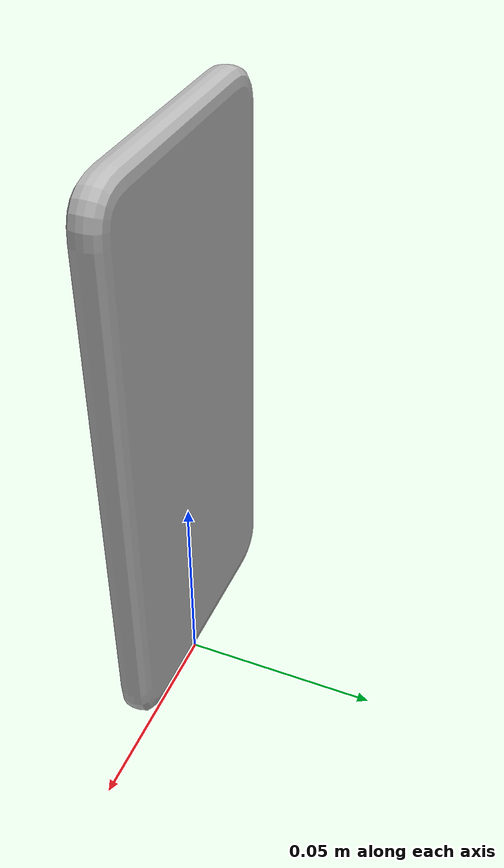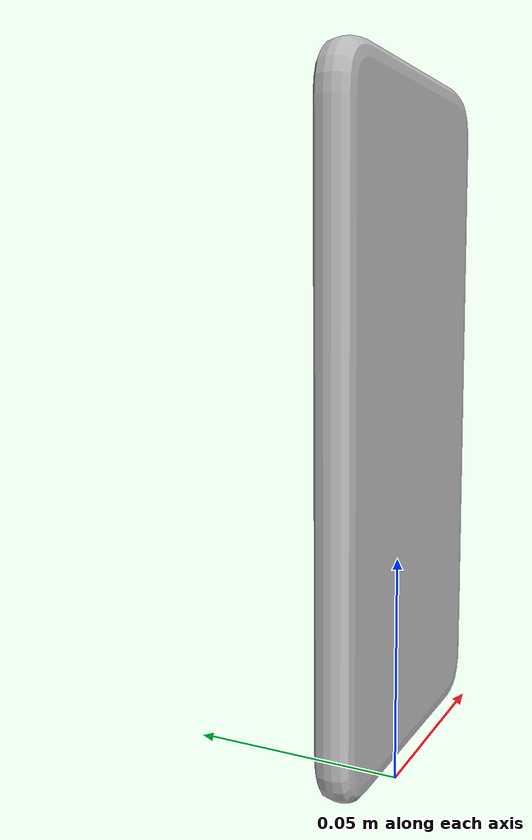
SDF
<?xml version='1.0' ?>
<sdf version="1.6">
    <model name="samsung_j8_black">
        <static>true</static>
        <link name="link">
            <pose>0 0 0.08 0 0 0</pose>
            <collision name="collision">
                <geometry>
                    <mesh>
                        <uri>model://phone/meshes/phone.dae</uri>
                    </mesh>
                </geometry>
            </collision>
            <visual name="visual">
                <geometry>
                    <mesh>
                        <uri>model://phone/meshes/phone.dae</uri>
                    </mesh>
                </geometry>
            </visual>
        </link>
  <plugin name="gz::sim::systems::Label" filename="gz-sim-label-system">
    <label>1</label>
  </plugin>
    </model>
</sdf>
